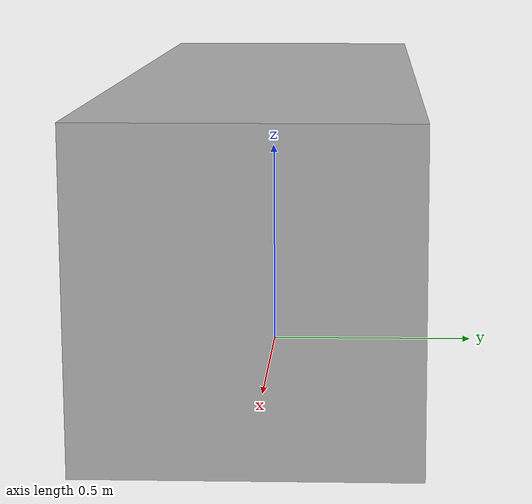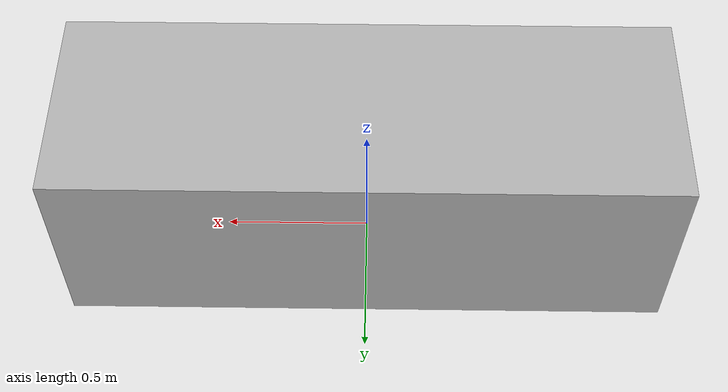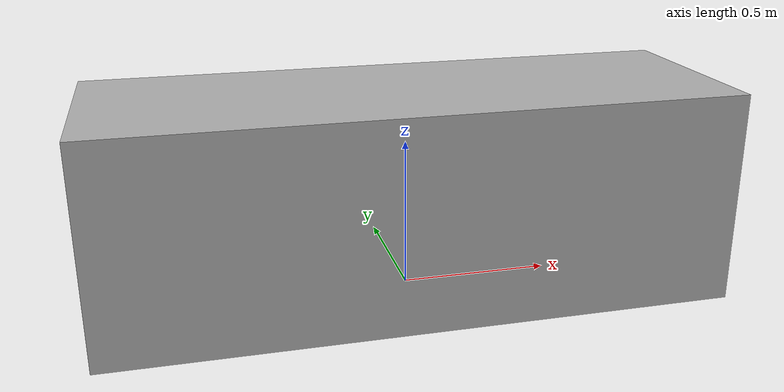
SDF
<?xml version="1.0" ?>
<sdf version="1.6">
  <model name="loader">
    <static>true</static>
    <link name="link">
      <collision name="collision">
        <geometry>
          <mesh>
            <scale>0.35 0.35 0.35</scale>
            <uri>model://loader/meshes/loader.dae</uri>
          </mesh>
        </geometry>
      </collision>
      <visual name="visual">
        <geometry>
          <mesh>
            <scale>0.35 0.35 0.35</scale>
            <uri>model://loader/meshes/loader.dae</uri>
          </mesh>
        </geometry>
       <material>
         <script>
           <uri>model://loader/materials/scripts</uri>
           <uri>model://loader/materials/textures</uri>
           <name>red/Diffuse</name>
         </script>
       </material>
      </visual>
    </link>
  </model>
</sdf>
